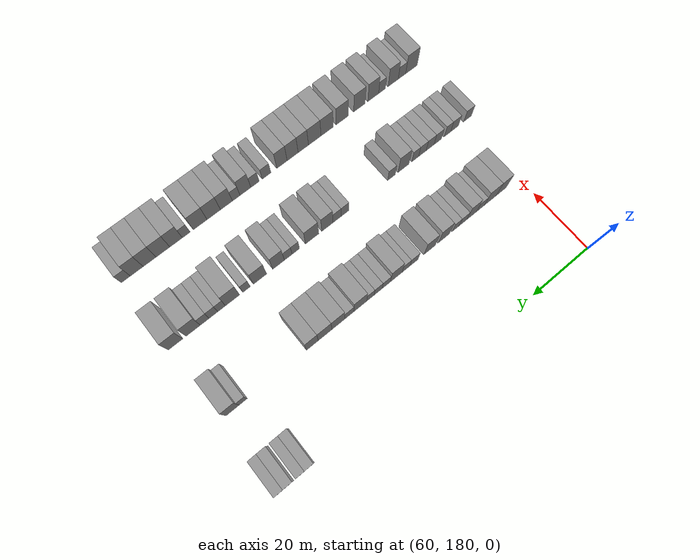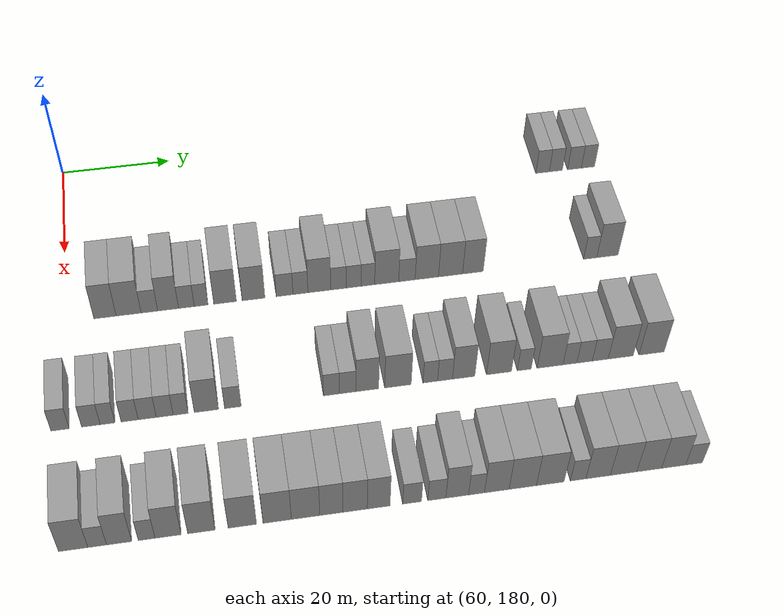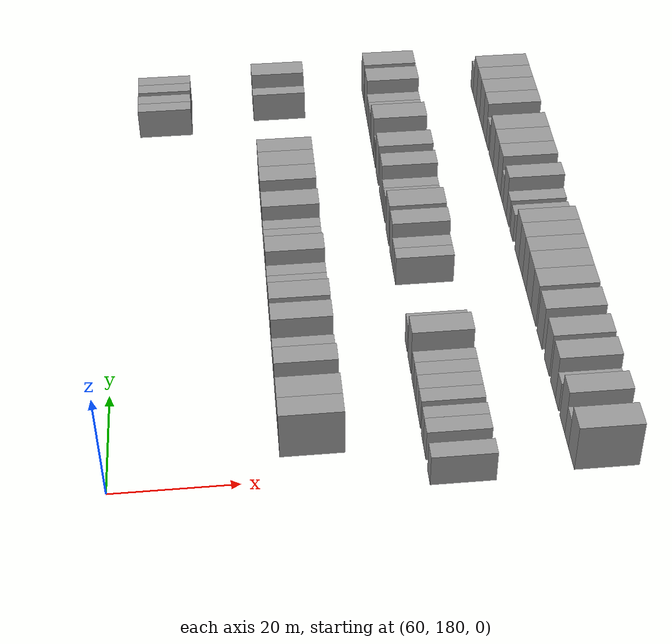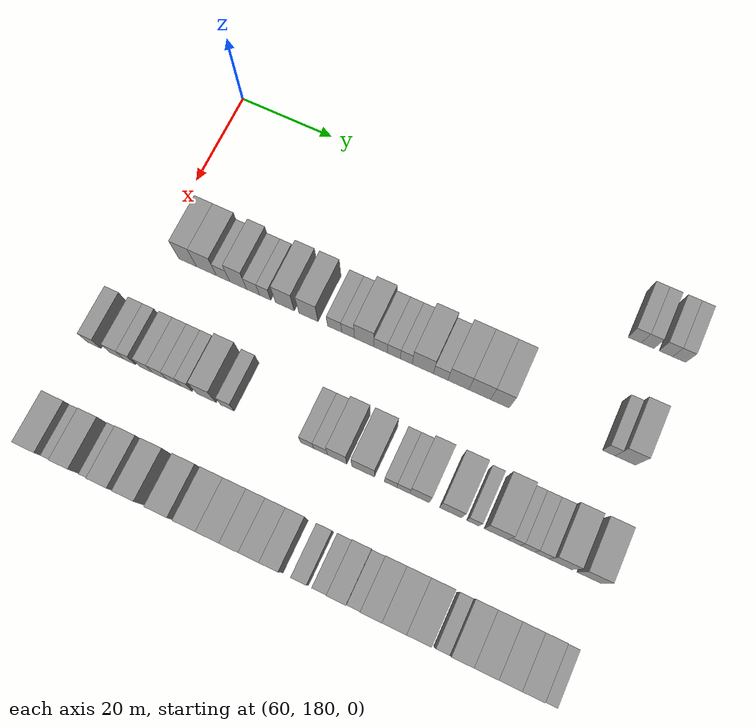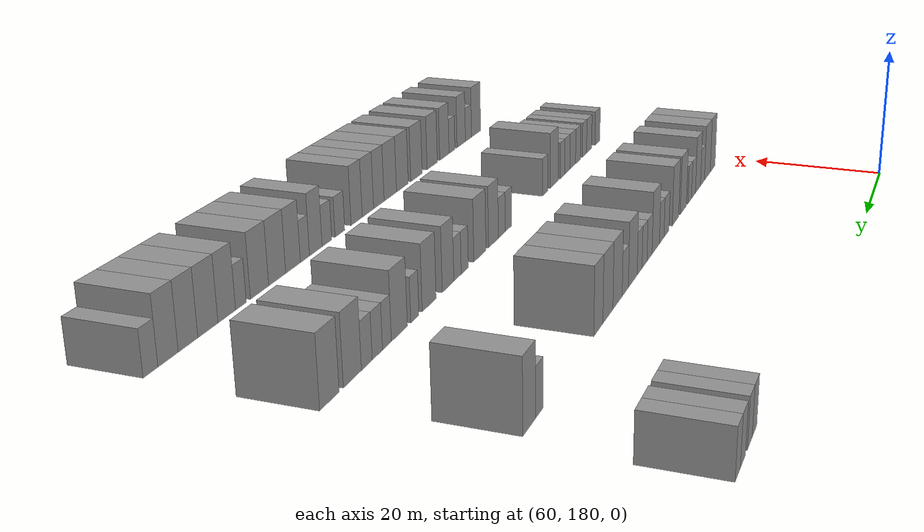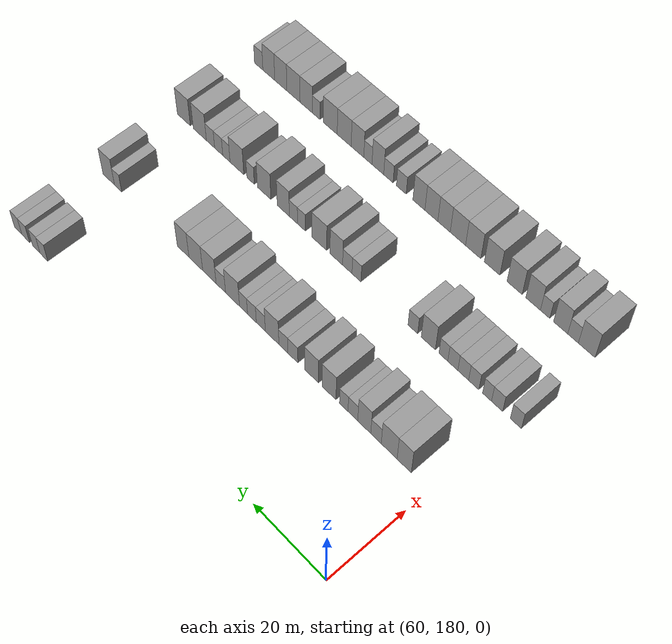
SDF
<sdf version="1.6">
 <world name="default">
  <model name="building_539">
   <static>1</static>
   <pose>69.0000 270.0166 0 0.000000 0.000000 0.000000</pose>
   <link name="link">
    <pose>0 0 3.00 0 0 0</pose>
    <collision name="collision"><geometry><box><size>10.0000 2.6324 6.0000</size></box></geometry></collision>
    <visual name="visual">
     <cast_shadows>0</cast_shadows>
     <geometry><box><size>10.0000 2.6324 6.0000</size></box></geometry>
     <material>
      <script>
       <uri>model://grey_wall/materials/scripts</uri>
       <uri>model://grey_wall/materials/textures</uri>
       <name>vrc/grey_wall</name>
      </script>
     </material>
    </visual>
   </link>
  </model>
  <model name="building_540">
   <static>1</static>
   <pose>69.0000 272.6156 0 0.000000 0.000000 0.000000</pose>
   <link name="link">
    <pose>0 0 3.00 0 0 0</pose>
    <collision name="collision"><geometry><box><size>10.0000 2.5657 6.0000</size></box></geometry></collision>
    <visual name="visual">
     <cast_shadows>0</cast_shadows>
     <geometry><box><size>10.0000 2.5657 6.0000</size></box></geometry>
     <material>
      <script>
       <uri>model://grey_wall/materials/scripts</uri>
       <uri>model://grey_wall/materials/textures</uri>
       <name>vrc/grey_wall</name>
      </script>
     </material>
    </visual>
   </link>
  </model>
  <model name="building_541">
   <static>1</static>
   <pose>69.0000 276.2423 0 0.000000 0.000000 0.000000</pose>
   <link name="link">
    <pose>0 0 3.00 0 0 0</pose>
    <collision name="collision"><geometry><box><size>10.0000 2.6877 6.0000</size></box></geometry></collision>
    <visual name="visual">
     <cast_shadows>0</cast_shadows>
     <geometry><box><size>10.0000 2.6877 6.0000</size></box></geometry>
     <material>
      <script>
       <uri>model://grey_wall/materials/scripts</uri>
       <uri>model://grey_wall/materials/textures</uri>
       <name>vrc/grey_wall</name>
      </script>
     </material>
    </visual>
   </link>
  </model>
  <model name="building_542">
   <static>1</static>
   <pose>69.0000 278.8850 0 0.000000 0.000000 0.000000</pose>
   <link name="link">
    <pose>0 0 3.00 0 0 0</pose>
    <collision name="collision"><geometry><box><size>10.0000 2.5975 6.0000</size></box></geometry></collision>
    <visual name="visual">
     <cast_shadows>0</cast_shadows>
     <geometry><box><size>10.0000 2.5975 6.0000</size></box></geometry>
     <material>
      <script>
       <uri>model://grey_wall/materials/scripts</uri>
       <uri>model://grey_wall/materials/textures</uri>
       <name>vrc/grey_wall</name>
      </script>
     </material>
    </visual>
   </link>
  </model>
  <model name="building_708">
   <static>1</static>
   <pose>91.0000 186.6628 0 0.000000 0.000000 0.000000</pose>
   <link name="link">
    <pose>0 0 4.50 0 0 0</pose>
    <collision name="collision"><geometry><box><size>10.0000 3.8399 9.0000</size></box></geometry></collision>
    <visual name="visual">
     <cast_shadows>0</cast_shadows>
     <geometry><box><size>10.0000 3.8399 9.0000</size></box></geometry>
     <material>
      <script>
       <uri>model://grey_wall/materials/scripts</uri>
       <uri>model://grey_wall/materials/textures</uri>
       <name>vrc/grey_wall</name>
      </script>
     </material>
    </visual>
   </link>
  </model>
  <model name="building_709">
   <static>1</static>
   <pose>91.0000 190.7460 0 0.000000 0.000000 0.000000</pose>
   <link name="link">
    <pose>0 0 4.50 0 0 0</pose>
    <collision name="collision"><geometry><box><size>10.0000 4.3265 9.0000</size></box></geometry></collision>
    <visual name="visual">
     <cast_shadows>0</cast_shadows>
     <geometry><box><size>10.0000 4.3265 9.0000</size></box></geometry>
     <material>
      <script>
       <uri>model://grey_wall/materials/scripts</uri>
       <uri>model://grey_wall/materials/textures</uri>
       <name>vrc/grey_wall</name>
      </script>
     </material>
    </visual>
   </link>
  </model>
  <model name="building_710">
   <static>1</static>
   <pose>91.0000 194.3509 0 0.000000 0.000000 0.000000</pose>
   <link name="link">
    <pose>0 0 3.00 0 0 0</pose>
    <collision name="collision"><geometry><box><size>10.0000 2.8833 6.0000</size></box></geometry></collision>
    <visual name="visual">
     <cast_shadows>0</cast_shadows>
     <geometry><box><size>10.0000 2.8833 6.0000</size></box></geometry>
     <material>
      <script>
       <uri>model://grey_wall/materials/scripts</uri>
       <uri>model://grey_wall/materials/textures</uri>
       <name>vrc/grey_wall</name>
      </script>
     </material>
    </visual>
   </link>
  </model>
  <model name="building_711">
   <static>1</static>
   <pose>91.0000 197.6028 0 0.000000 0.000000 0.000000</pose>
   <link name="link">
    <pose>0 0 4.50 0 0 0</pose>
    <collision name="collision"><geometry><box><size>10.0000 3.6205 9.0000</size></box></geometry></collision>
    <visual name="visual">
     <cast_shadows>0</cast_shadows>
     <geometry><box><size>10.0000 3.6205 9.0000</size></box></geometry>
     <material>
      <script>
       <uri>model://grey_wall/materials/scripts</uri>
       <uri>model://grey_wall/materials/textures</uri>
       <name>vrc/grey_wall</name>
      </script>
     </material>
    </visual>
   </link>
  </model>
  <model name="building_712">
   <static>1</static>
   <pose>91.0000 200.7875 0 0.000000 0.000000 0.000000</pose>
   <link name="link">
    <pose>0 0 3.00 0 0 0</pose>
    <collision name="collision"><geometry><box><size>10.0000 2.7489 6.0000</size></box></geometry></collision>
    <visual name="visual">
     <cast_shadows>0</cast_shadows>
     <geometry><box><size>10.0000 2.7489 6.0000</size></box></geometry>
     <material>
      <script>
       <uri>model://grey_wall/materials/scripts</uri>
       <uri>model://grey_wall/materials/textures</uri>
       <name>vrc/grey_wall</name>
      </script>
     </material>
    </visual>
   </link>
  </model>
  <model name="building_713">
   <static>1</static>
   <pose>91.0000 203.3646 0 0.000000 0.000000 0.000000</pose>
   <link name="link">
    <pose>0 0 3.00 0 0 0</pose>
    <collision name="collision"><geometry><box><size>10.0000 2.4052 6.0000</size></box></geometry></collision>
    <visual name="visual">
     <cast_shadows>0</cast_shadows>
     <geometry><box><size>10.0000 2.4052 6.0000</size></box></geometry>
     <material>
      <script>
       <uri>model://grey_wall/materials/scripts</uri>
       <uri>model://grey_wall/materials/textures</uri>
       <name>vrc/grey_wall</name>
      </script>
     </material>
    </visual>
   </link>
  </model>
  <model name="building_714">
   <static>1</static>
   <pose>91.0000 207.5582 0 0.000000 0.000000 0.000000</pose>
   <link name="link">
    <pose>0 0 4.50 0 0 0</pose>
    <collision name="collision"><geometry><box><size>10.0000 3.9821 9.0000</size></box></geometry></collision>
    <visual name="visual">
     <cast_shadows>0</cast_shadows>
     <geometry><box><size>10.0000 3.9821 9.0000</size></box></geometry>
     <material>
      <script>
       <uri>model://grey_wall/materials/scripts</uri>
       <uri>model://grey_wall/materials/textures</uri>
       <name>vrc/grey_wall</name>
      </script>
     </material>
    </visual>
   </link>
  </model>
  <model name="building_715">
   <static>1</static>
   <pose>91.0000 212.5564 0 0.000000 0.000000 0.000000</pose>
   <link name="link">
    <pose>0 0 4.50 0 0 0</pose>
    <collision name="collision"><geometry><box><size>10.0000 4.0143 9.0000</size></box></geometry></collision>
    <visual name="visual">
     <cast_shadows>0</cast_shadows>
     <geometry><box><size>10.0000 4.0143 9.0000</size></box></geometry>
     <material>
      <script>
       <uri>model://grey_wall/materials/scripts</uri>
       <uri>model://grey_wall/materials/textures</uri>
       <name>vrc/grey_wall</name>
      </script>
     </material>
    </visual>
   </link>
  </model>
  <model name="building_716">
   <static>1</static>
   <pose>91.0000 218.0410 0 0.000000 0.000000 0.000000</pose>
   <link name="link">
    <pose>0 0 3.00 0 0 0</pose>
    <collision name="collision"><geometry><box><size>10.0000 2.9549 6.0000</size></box></geometry></collision>
    <visual name="visual">
     <cast_shadows>0</cast_shadows>
     <geometry><box><size>10.0000 2.9549 6.0000</size></box></geometry>
     <material>
      <script>
       <uri>model://grey_wall/materials/scripts</uri>
       <uri>model://grey_wall/materials/textures</uri>
       <name>vrc/grey_wall</name>
      </script>
     </material>
    </visual>
   </link>
  </model>
  <model name="building_717">
   <static>1</static>
   <pose>91.0000 220.8439 0 0.000000 0.000000 0.000000</pose>
   <link name="link">
    <pose>0 0 3.00 0 0 0</pose>
    <collision name="collision"><geometry><box><size>10.0000 2.6510 6.0000</size></box></geometry></collision>
    <visual name="visual">
     <cast_shadows>0</cast_shadows>
     <geometry><box><size>10.0000 2.6510 6.0000</size></box></geometry>
     <material>
      <script>
       <uri>model://grey_wall/materials/scripts</uri>
       <uri>model://grey_wall/materials/textures</uri>
       <name>vrc/grey_wall</name>
      </script>
     </material>
    </visual>
   </link>
  </model>
  <model name="building_718">
   <static>1</static>
   <pose>91.0000 224.2009 0 0.000000 0.000000 0.000000</pose>
   <link name="link">
    <pose>0 0 4.50 0 0 0</pose>
    <collision name="collision"><geometry><box><size>10.0000 4.0630 9.0000</size></box></geometry></collision>
    <visual name="visual">
     <cast_shadows>0</cast_shadows>
     <geometry><box><size>10.0000 4.0630 9.0000</size></box></geometry>
     <material>
      <script>
       <uri>model://grey_wall/materials/scripts</uri>
       <uri>model://grey_wall/materials/textures</uri>
       <name>vrc/grey_wall</name>
      </script>
     </material>
    </visual>
   </link>
  </model>
  <model name="building_719">
   <static>1</static>
   <pose>91.0000 227.5975 0 0.000000 0.000000 0.000000</pose>
   <link name="link">
    <pose>0 0 3.00 0 0 0</pose>
    <collision name="collision"><geometry><box><size>10.0000 2.7301 6.0000</size></box></geometry></collision>
    <visual name="visual">
     <cast_shadows>0</cast_shadows>
     <geometry><box><size>10.0000 2.7301 6.0000</size></box></geometry>
     <material>
      <script>
       <uri>model://grey_wall/materials/scripts</uri>
       <uri>model://grey_wall/materials/textures</uri>
       <name>vrc/grey_wall</name>
      </script>
     </material>
    </visual>
   </link>
  </model>
  <model name="building_720">
   <static>1</static>
   <pose>91.0000 230.2960 0 0.000000 0.000000 0.000000</pose>
   <link name="link">
    <pose>0 0 3.00 0 0 0</pose>
    <collision name="collision"><geometry><box><size>10.0000 2.6669 6.0000</size></box></geometry></collision>
    <visual name="visual">
     <cast_shadows>0</cast_shadows>
     <geometry><box><size>10.0000 2.6669 6.0000</size></box></geometry>
     <material>
      <script>
       <uri>model://grey_wall/materials/scripts</uri>
       <uri>model://grey_wall/materials/textures</uri>
       <name>vrc/grey_wall</name>
      </script>
     </material>
    </visual>
   </link>
  </model>
  <model name="building_721">
   <static>1</static>
   <pose>91.0000 232.8555 0 0.000000 0.000000 0.000000</pose>
   <link name="link">
    <pose>0 0 3.00 0 0 0</pose>
    <collision name="collision"><geometry><box><size>10.0000 2.4523 6.0000</size></box></geometry></collision>
    <visual name="visual">
     <cast_shadows>0</cast_shadows>
     <geometry><box><size>10.0000 2.4523 6.0000</size></box></geometry>
     <material>
      <script>
       <uri>model://grey_wall/materials/scripts</uri>
       <uri>model://grey_wall/materials/textures</uri>
       <name>vrc/grey_wall</name>
      </script>
     </material>
    </visual>
   </link>
  </model>
  <model name="building_722">
   <static>1</static>
   <pose>91.0000 236.2412 0 0.000000 0.000000 0.000000</pose>
   <link name="link">
    <pose>0 0 4.50 0 0 0</pose>
    <collision name="collision"><geometry><box><size>10.0000 4.3190 9.0000</size></box></geometry></collision>
    <visual name="visual">
     <cast_shadows>0</cast_shadows>
     <geometry><box><size>10.0000 4.3190 9.0000</size></box></geometry>
     <material>
      <script>
       <uri>model://grey_wall/materials/scripts</uri>
       <uri>model://grey_wall/materials/textures</uri>
       <name>vrc/grey_wall</name>
      </script>
     </material>
    </visual>
   </link>
  </model>
  <model name="building_723">
   <static>1</static>
   <pose>91.0000 239.8791 0 0.000000 0.000000 0.000000</pose>
   <link name="link">
    <pose>0 0 3.00 0 0 0</pose>
    <collision name="collision"><geometry><box><size>10.0000 2.9568 6.0000</size></box></geometry></collision>
    <visual name="visual">
     <cast_shadows>0</cast_shadows>
     <geometry><box><size>10.0000 2.9568 6.0000</size></box></geometry>
     <material>
      <script>
       <uri>model://grey_wall/materials/scripts</uri>
       <uri>model://grey_wall/materials/textures</uri>
       <name>vrc/grey_wall</name>
      </script>
     </material>
    </visual>
   </link>
  </model>
  <model name="building_724">
   <static>1</static>
   <pose>91.0000 243.4673 0 0.000000 0.000000 0.000000</pose>
   <link name="link">
    <pose>0 0 4.50 0 0 0</pose>
    <collision name="collision"><geometry><box><size>10.0000 4.2196 9.0000</size></box></geometry></collision>
    <visual name="visual">
     <cast_shadows>0</cast_shadows>
     <geometry><box><size>10.0000 4.2196 9.0000</size></box></geometry>
     <material>
      <script>
       <uri>model://grey_wall/materials/scripts</uri>
       <uri>model://grey_wall/materials/textures</uri>
       <name>vrc/grey_wall</name>
      </script>
     </material>
    </visual>
   </link>
  </model>
  <model name="building_725">
   <static>1</static>
   <pose>91.0000 247.7592 0 0.000000 0.000000 0.000000</pose>
   <link name="link">
    <pose>0 0 4.50 0 0 0</pose>
    <collision name="collision"><geometry><box><size>10.0000 4.3641 9.0000</size></box></geometry></collision>
    <visual name="visual">
     <cast_shadows>0</cast_shadows>
     <geometry><box><size>10.0000 4.3641 9.0000</size></box></geometry>
     <material>
      <script>
       <uri>model://grey_wall/materials/scripts</uri>
       <uri>model://grey_wall/materials/textures</uri>
       <name>vrc/grey_wall</name>
      </script>
     </material>
    </visual>
   </link>
  </model>
  <model name="building_726">
   <static>1</static>
   <pose>91.0000 251.8215 0 0.000000 0.000000 0.000000</pose>
   <link name="link">
    <pose>0 0 4.50 0 0 0</pose>
    <collision name="collision"><geometry><box><size>10.0000 3.7606 9.0000</size></box></geometry></collision>
    <visual name="visual">
     <cast_shadows>0</cast_shadows>
     <geometry><box><size>10.0000 3.7606 9.0000</size></box></geometry>
     <material>
      <script>
       <uri>model://grey_wall/materials/scripts</uri>
       <uri>model://grey_wall/materials/textures</uri>
       <name>vrc/grey_wall</name>
      </script>
     </material>
    </visual>
   </link>
  </model>
  <model name="building_727">
   <static>1</static>
   <pose>91.0000 273.3491 0 0.000000 0.000000 0.000000</pose>
   <link name="link">
    <pose>0 0 3.00 0 0 0</pose>
    <collision name="collision"><geometry><box><size>10.0000 2.4315 6.0000</size></box></geometry></collision>
    <visual name="visual">
     <cast_shadows>0</cast_shadows>
     <geometry><box><size>10.0000 2.4315 6.0000</size></box></geometry>
     <material>
      <script>
       <uri>model://grey_wall/materials/scripts</uri>
       <uri>model://grey_wall/materials/textures</uri>
       <name>vrc/grey_wall</name>
      </script>
     </material>
    </visual>
   </link>
  </model>
  <model name="building_728">
   <static>1</static>
   <pose>91.0000 276.5462 0 0.000000 0.000000 0.000000</pose>
   <link name="link">
    <pose>0 0 4.50 0 0 0</pose>
    <collision name="collision"><geometry><box><size>10.0000 3.9628 9.0000</size></box></geometry></collision>
    <visual name="visual">
     <cast_shadows>0</cast_shadows>
     <geometry><box><size>10.0000 3.9628 9.0000</size></box></geometry>
     <material>
      <script>
       <uri>model://grey_wall/materials/scripts</uri>
       <uri>model://grey_wall/materials/textures</uri>
       <name>vrc/grey_wall</name>
      </script>
     </material>
    </visual>
   </link>
  </model>
  <model name="building_883">
   <static>1</static>
   <pose>113.0000 178.6025 0 0.000000 0.000000 0.000000</pose>
   <link name="link">
    <pose>0 0 3.00 0 0 0</pose>
    <collision name="collision"><geometry><box><size>10.0000 2.9514 6.0000</size></box></geometry></collision>
    <visual name="visual">
     <cast_shadows>0</cast_shadows>
     <geometry><box><size>10.0000 2.9514 6.0000</size></box></geometry>
     <material>
      <script>
       <uri>model://grey_wall/materials/scripts</uri>
       <uri>model://grey_wall/materials/textures</uri>
       <name>vrc/grey_wall</name>
      </script>
     </material>
    </visual>
   </link>
  </model>
  <model name="building_884">
   <static>1</static>
   <pose>113.0000 183.5753 0 0.000000 0.000000 0.000000</pose>
   <link name="link">
    <pose>0 0 3.00 0 0 0</pose>
    <collision name="collision"><geometry><box><size>10.0000 2.9942 6.0000</size></box></geometry></collision>
    <visual name="visual">
     <cast_shadows>0</cast_shadows>
     <geometry><box><size>10.0000 2.9942 6.0000</size></box></geometry>
     <material>
      <script>
       <uri>model://grey_wall/materials/scripts</uri>
       <uri>model://grey_wall/materials/textures</uri>
       <name>vrc/grey_wall</name>
      </script>
     </material>
    </visual>
   </link>
  </model>
  <model name="building_885">
   <static>1</static>
   <pose>113.0000 186.2754 0 0.000000 0.000000 0.000000</pose>
   <link name="link">
    <pose>0 0 3.00 0 0 0</pose>
    <collision name="collision"><geometry><box><size>10.0000 2.4059 6.0000</size></box></geometry></collision>
    <visual name="visual">
     <cast_shadows>0</cast_shadows>
     <geometry><box><size>10.0000 2.4059 6.0000</size></box></geometry>
     <material>
      <script>
       <uri>model://grey_wall/materials/scripts</uri>
       <uri>model://grey_wall/materials/textures</uri>
       <name>vrc/grey_wall</name>
      </script>
     </material>
    </visual>
   </link>
  </model>
  <model name="building_886">
   <static>1</static>
   <pose>113.0000 189.8701 0 0.000000 0.000000 0.000000</pose>
   <link name="link">
    <pose>0 0 3.00 0 0 0</pose>
    <collision name="collision"><geometry><box><size>10.0000 2.7835 6.0000</size></box></geometry></collision>
    <visual name="visual">
     <cast_shadows>0</cast_shadows>
     <geometry><box><size>10.0000 2.7835 6.0000</size></box></geometry>
     <material>
      <script>
       <uri>model://grey_wall/materials/scripts</uri>
       <uri>model://grey_wall/materials/textures</uri>
       <name>vrc/grey_wall</name>
      </script>
     </material>
    </visual>
   </link>
  </model>
  <model name="building_887">
   <static>1</static>
   <pose>113.0000 192.7356 0 0.000000 0.000000 0.000000</pose>
   <link name="link">
    <pose>0 0 3.00 0 0 0</pose>
    <collision name="collision"><geometry><box><size>10.0000 2.9476 6.0000</size></box></geometry></collision>
    <visual name="visual">
     <cast_shadows>0</cast_shadows>
     <geometry><box><size>10.0000 2.9476 6.0000</size></box></geometry>
     <material>
      <script>
       <uri>model://grey_wall/materials/scripts</uri>
       <uri>model://grey_wall/materials/textures</uri>
       <name>vrc/grey_wall</name>
      </script>
     </material>
    </visual>
   </link>
  </model>
  <model name="building_888">
   <static>1</static>
   <pose>113.0000 195.5973 0 0.000000 0.000000 0.000000</pose>
   <link name="link">
    <pose>0 0 3.00 0 0 0</pose>
    <collision name="collision"><geometry><box><size>10.0000 2.7757 6.0000</size></box></geometry></collision>
    <visual name="visual">
     <cast_shadows>0</cast_shadows>
     <geometry><box><size>10.0000 2.7757 6.0000</size></box></geometry>
     <material>
      <script>
       <uri>model://grey_wall/materials/scripts</uri>
       <uri>model://grey_wall/materials/textures</uri>
       <name>vrc/grey_wall</name>
      </script>
     </material>
    </visual>
   </link>
  </model>
  <model name="building_889">
   <static>1</static>
   <pose>113.0000 198.2112 0 0.000000 0.000000 0.000000</pose>
   <link name="link">
    <pose>0 0 3.00 0 0 0</pose>
    <collision name="collision"><geometry><box><size>10.0000 2.4521 6.0000</size></box></geometry></collision>
    <visual name="visual">
     <cast_shadows>0</cast_shadows>
     <geometry><box><size>10.0000 2.4521 6.0000</size></box></geometry>
     <material>
      <script>
       <uri>model://grey_wall/materials/scripts</uri>
       <uri>model://grey_wall/materials/textures</uri>
       <name>vrc/grey_wall</name>
      </script>
     </material>
    </visual>
   </link>
  </model>
  <model name="building_890">
   <static>1</static>
   <pose>113.0000 202.4289 0 0.000000 0.000000 0.000000</pose>
   <link name="link">
    <pose>0 0 4.50 0 0 0</pose>
    <collision name="collision"><geometry><box><size>10.0000 3.9834 9.0000</size></box></geometry></collision>
    <visual name="visual">
     <cast_shadows>0</cast_shadows>
     <geometry><box><size>10.0000 3.9834 9.0000</size></box></geometry>
     <material>
      <script>
       <uri>model://grey_wall/materials/scripts</uri>
       <uri>model://grey_wall/materials/textures</uri>
       <name>vrc/grey_wall</name>
      </script>
     </material>
    </visual>
   </link>
  </model>
  <model name="building_891">
   <static>1</static>
   <pose>113.0000 206.7985 0 0.000000 0.000000 0.000000</pose>
   <link name="link">
    <pose>0 0 3.00 0 0 0</pose>
    <collision name="collision"><geometry><box><size>10.0000 2.7558 6.0000</size></box></geometry></collision>
    <visual name="visual">
     <cast_shadows>0</cast_shadows>
     <geometry><box><size>10.0000 2.7558 6.0000</size></box></geometry>
     <material>
      <script>
       <uri>model://grey_wall/materials/scripts</uri>
       <uri>model://grey_wall/materials/textures</uri>
       <name>vrc/grey_wall</name>
      </script>
     </material>
    </visual>
   </link>
  </model>
  <model name="building_892">
   <static>1</static>
   <pose>113.0000 223.1789 0 0.000000 0.000000 0.000000</pose>
   <link name="link">
    <pose>0 0 3.00 0 0 0</pose>
    <collision name="collision"><geometry><box><size>10.0000 2.6683 6.0000</size></box></geometry></collision>
    <visual name="visual">
     <cast_shadows>0</cast_shadows>
     <geometry><box><size>10.0000 2.6683 6.0000</size></box></geometry>
     <material>
      <script>
       <uri>model://grey_wall/materials/scripts</uri>
       <uri>model://grey_wall/materials/textures</uri>
       <name>vrc/grey_wall</name>
      </script>
     </material>
    </visual>
   </link>
  </model>
  <model name="building_893">
   <static>1</static>
   <pose>113.0000 225.9132 0 0.000000 0.000000 0.000000</pose>
   <link name="link">
    <pose>0 0 3.00 0 0 0</pose>
    <collision name="collision"><geometry><box><size>10.0000 2.8003 6.0000</size></box></geometry></collision>
    <visual name="visual">
     <cast_shadows>0</cast_shadows>
     <geometry><box><size>10.0000 2.8003 6.0000</size></box></geometry>
     <material>
      <script>
       <uri>model://grey_wall/materials/scripts</uri>
       <uri>model://grey_wall/materials/textures</uri>
       <name>vrc/grey_wall</name>
      </script>
     </material>
    </visual>
   </link>
  </model>
  <model name="building_894">
   <static>1</static>
   <pose>113.0000 229.2231 0 0.000000 0.000000 0.000000</pose>
   <link name="link">
    <pose>0 0 4.50 0 0 0</pose>
    <collision name="collision"><geometry><box><size>10.0000 3.8196 9.0000</size></box></geometry></collision>
    <visual name="visual">
     <cast_shadows>0</cast_shadows>
     <geometry><box><size>10.0000 3.8196 9.0000</size></box></geometry>
     <material>
      <script>
       <uri>model://grey_wall/materials/scripts</uri>
       <uri>model://grey_wall/materials/textures</uri>
       <name>vrc/grey_wall</name>
      </script>
     </material>
    </visual>
   </link>
  </model>
  <model name="building_895">
   <static>1</static>
   <pose>113.0000 234.3819 0 0.000000 0.000000 0.000000</pose>
   <link name="link">
    <pose>0 0 4.50 0 0 0</pose>
    <collision name="collision"><geometry><box><size>10.0000 4.4979 9.0000</size></box></geometry></collision>
    <visual name="visual">
     <cast_shadows>0</cast_shadows>
     <geometry><box><size>10.0000 4.4979 9.0000</size></box></geometry>
     <material>
      <script>
       <uri>model://grey_wall/materials/scripts</uri>
       <uri>model://grey_wall/materials/textures</uri>
       <name>vrc/grey_wall</name>
      </script>
     </material>
    </visual>
   </link>
  </model>
  <model name="building_896">
   <static>1</static>
   <pose>113.0000 239.8631 0 0.000000 0.000000 0.000000</pose>
   <link name="link">
    <pose>0 0 3.00 0 0 0</pose>
    <collision name="collision"><geometry><box><size>10.0000 2.4645 6.0000</size></box></geometry></collision>
    <visual name="visual">
     <cast_shadows>0</cast_shadows>
     <geometry><box><size>10.0000 2.4645 6.0000</size></box></geometry>
     <material>
      <script>
       <uri>model://grey_wall/materials/scripts</uri>
       <uri>model://grey_wall/materials/textures</uri>
       <name>vrc/grey_wall</name>
      </script>
     </material>
    </visual>
   </link>
  </model>
  <model name="building_897">
   <static>1</static>
   <pose>113.0000 242.3641 0 0.000000 0.000000 0.000000</pose>
   <link name="link">
    <pose>0 0 3.00 0 0 0</pose>
    <collision name="collision"><geometry><box><size>10.0000 2.5375 6.0000</size></box></geometry></collision>
    <visual name="visual">
     <cast_shadows>0</cast_shadows>
     <geometry><box><size>10.0000 2.5375 6.0000</size></box></geometry>
     <material>
      <script>
       <uri>model://grey_wall/materials/scripts</uri>
       <uri>model://grey_wall/materials/textures</uri>
       <name>vrc/grey_wall</name>
      </script>
     </material>
    </visual>
   </link>
  </model>
  <model name="building_898">
   <static>1</static>
   <pose>113.0000 245.5498 0 0.000000 0.000000 0.000000</pose>
   <link name="link">
    <pose>0 0 4.50 0 0 0</pose>
    <collision name="collision"><geometry><box><size>10.0000 3.8339 9.0000</size></box></geometry></collision>
    <visual name="visual">
     <cast_shadows>0</cast_shadows>
     <geometry><box><size>10.0000 3.8339 9.0000</size></box></geometry>
     <material>
      <script>
       <uri>model://grey_wall/materials/scripts</uri>
       <uri>model://grey_wall/materials/textures</uri>
       <name>vrc/grey_wall</name>
      </script>
     </material>
    </visual>
   </link>
  </model>
  <model name="building_899">
   <static>1</static>
   <pose>113.0000 251.6136 0 0.000000 0.000000 0.000000</pose>
   <link name="link">
    <pose>0 0 4.50 0 0 0</pose>
    <collision name="collision"><geometry><box><size>10.0000 4.2938 9.0000</size></box></geometry></collision>
    <visual name="visual">
     <cast_shadows>0</cast_shadows>
     <geometry><box><size>10.0000 4.2938 9.0000</size></box></geometry>
     <material>
      <script>
       <uri>model://grey_wall/materials/scripts</uri>
       <uri>model://grey_wall/materials/textures</uri>
       <name>vrc/grey_wall</name>
      </script>
     </material>
    </visual>
   </link>
  </model>
  <model name="building_900">
   <static>1</static>
   <pose>113.0000 255.9635 0 0.000000 0.000000 0.000000</pose>
   <link name="link">
    <pose>0 0 3.00 0 0 0</pose>
    <collision name="collision"><geometry><box><size>10.0000 2.4061 6.0000</size></box></geometry></collision>
    <visual name="visual">
     <cast_shadows>0</cast_shadows>
     <geometry><box><size>10.0000 2.4061 6.0000</size></box></geometry>
     <material>
      <script>
       <uri>model://grey_wall/materials/scripts</uri>
       <uri>model://grey_wall/materials/textures</uri>
       <name>vrc/grey_wall</name>
      </script>
     </material>
    </visual>
   </link>
  </model>
  <model name="building_901">
   <static>1</static>
   <pose>113.0000 260.4113 0 0.000000 0.000000 0.000000</pose>
   <link name="link">
    <pose>0 0 4.50 0 0 0</pose>
    <collision name="collision"><geometry><box><size>10.0000 4.4895 9.0000</size></box></geometry></collision>
    <visual name="visual">
     <cast_shadows>0</cast_shadows>
     <geometry><box><size>10.0000 4.4895 9.0000</size></box></geometry>
     <material>
      <script>
       <uri>model://grey_wall/materials/scripts</uri>
       <uri>model://grey_wall/materials/textures</uri>
       <name>vrc/grey_wall</name>
      </script>
     </material>
    </visual>
   </link>
  </model>
  <model name="building_902">
   <static>1</static>
   <pose>113.0000 263.8571 0 0.000000 0.000000 0.000000</pose>
   <link name="link">
    <pose>0 0 3.00 0 0 0</pose>
    <collision name="collision"><geometry><box><size>10.0000 2.4019 6.0000</size></box></geometry></collision>
    <visual name="visual">
     <cast_shadows>0</cast_shadows>
     <geometry><box><size>10.0000 2.4019 6.0000</size></box></geometry>
     <material>
      <script>
       <uri>model://grey_wall/materials/scripts</uri>
       <uri>model://grey_wall/materials/textures</uri>
       <name>vrc/grey_wall</name>
      </script>
     </material>
    </visual>
   </link>
  </model>
  <model name="building_903">
   <static>1</static>
   <pose>113.0000 266.4075 0 0.000000 0.000000 0.000000</pose>
   <link name="link">
    <pose>0 0 3.00 0 0 0</pose>
    <collision name="collision"><geometry><box><size>10.0000 2.6990 6.0000</size></box></geometry></collision>
    <visual name="visual">
     <cast_shadows>0</cast_shadows>
     <geometry><box><size>10.0000 2.6990 6.0000</size></box></geometry>
     <material>
      <script>
       <uri>model://grey_wall/materials/scripts</uri>
       <uri>model://grey_wall/materials/textures</uri>
       <name>vrc/grey_wall</name>
      </script>
     </material>
    </visual>
   </link>
  </model>
  <model name="building_904">
   <static>1</static>
   <pose>113.0000 269.1327 0 0.000000 0.000000 0.000000</pose>
   <link name="link">
    <pose>0 0 3.00 0 0 0</pose>
    <collision name="collision"><geometry><box><size>10.0000 2.7513 6.0000</size></box></geometry></collision>
    <visual name="visual">
     <cast_shadows>0</cast_shadows>
     <geometry><box><size>10.0000 2.7513 6.0000</size></box></geometry>
     <material>
      <script>
       <uri>model://grey_wall/materials/scripts</uri>
       <uri>model://grey_wall/materials/textures</uri>
       <name>vrc/grey_wall</name>
      </script>
     </material>
    </visual>
   </link>
  </model>
  <model name="building_905">
   <static>1</static>
   <pose>113.0000 272.7066 0 0.000000 0.000000 0.000000</pose>
   <link name="link">
    <pose>0 0 4.50 0 0 0</pose>
    <collision name="collision"><geometry><box><size>10.0000 4.3965 9.0000</size></box></geometry></collision>
    <visual name="visual">
     <cast_shadows>0</cast_shadows>
     <geometry><box><size>10.0000 4.3965 9.0000</size></box></geometry>
     <material>
      <script>
       <uri>model://grey_wall/materials/scripts</uri>
       <uri>model://grey_wall/materials/textures</uri>
       <name>vrc/grey_wall</name>
      </script>
     </material>
    </visual>
   </link>
  </model>
  <model name="building_906">
   <static>1</static>
   <pose>113.0000 278.1227 0 0.000000 0.000000 0.000000</pose>
   <link name="link">
    <pose>0 0 4.50 0 0 0</pose>
    <collision name="collision"><geometry><box><size>10.0000 4.4355 9.0000</size></box></geometry></collision>
    <visual name="visual">
     <cast_shadows>0</cast_shadows>
     <geometry><box><size>10.0000 4.4355 9.0000</size></box></geometry>
     <material>
      <script>
       <uri>model://grey_wall/materials/scripts</uri>
       <uri>model://grey_wall/materials/textures</uri>
       <name>vrc/grey_wall</name>
      </script>
     </material>
    </visual>
   </link>
  </model>
  <model name="building_1072">
   <static>1</static>
   <pose>135.0000 180.2424 0 0.000000 0.000000 0.000000</pose>
   <link name="link">
    <pose>0 0 4.50 0 0 0</pose>
    <collision name="collision"><geometry><box><size>10.0000 4.4291 9.0000</size></box></geometry></collision>
    <visual name="visual">
     <cast_shadows>0</cast_shadows>
     <geometry><box><size>10.0000 4.4291 9.0000</size></box></geometry>
     <material>
      <script>
       <uri>model://grey_wall/materials/scripts</uri>
       <uri>model://grey_wall/materials/textures</uri>
       <name>vrc/grey_wall</name>
      </script>
     </material>
    </visual>
   </link>
  </model>
  <model name="building_1073">
   <static>1</static>
   <pose>135.0000 183.8774 0 0.000000 0.000000 0.000000</pose>
   <link name="link">
    <pose>0 0 3.00 0 0 0</pose>
    <collision name="collision"><geometry><box><size>10.0000 2.8407 6.0000</size></box></geometry></collision>
    <visual name="visual">
     <cast_shadows>0</cast_shadows>
     <geometry><box><size>10.0000 2.8407 6.0000</size></box></geometry>
     <material>
      <script>
       <uri>model://grey_wall/materials/scripts</uri>
       <uri>model://grey_wall/materials/textures</uri>
       <name>vrc/grey_wall</name>
      </script>
     </material>
    </visual>
   </link>
  </model>
  <model name="building_1074">
   <static>1</static>
   <pose>135.0000 187.2081 0 0.000000 0.000000 0.000000</pose>
   <link name="link">
    <pose>0 0 4.50 0 0 0</pose>
    <collision name="collision"><geometry><box><size>10.0000 3.8208 9.0000</size></box></geometry></collision>
    <visual name="visual">
     <cast_shadows>0</cast_shadows>
     <geometry><box><size>10.0000 3.8208 9.0000</size></box></geometry>
     <material>
      <script>
       <uri>model://grey_wall/materials/scripts</uri>
       <uri>model://grey_wall/materials/textures</uri>
       <name>vrc/grey_wall</name>
      </script>
     </material>
    </visual>
   </link>
  </model>
  <model name="building_1075">
   <static>1</static>
   <pose>135.0000 191.4019 0 0.000000 0.000000 0.000000</pose>
   <link name="link">
    <pose>0 0 3.00 0 0 0</pose>
    <collision name="collision"><geometry><box><size>10.0000 2.5669 6.0000</size></box></geometry></collision>
    <visual name="visual">
     <cast_shadows>0</cast_shadows>
     <geometry><box><size>10.0000 2.5669 6.0000</size></box></geometry>
     <material>
      <script>
       <uri>model://grey_wall/materials/scripts</uri>
       <uri>model://grey_wall/materials/textures</uri>
       <name>vrc/grey_wall</name>
      </script>
     </material>
    </visual>
   </link>
  </model>
  <model name="building_1076">
   <static>1</static>
   <pose>135.0000 194.6913 0 0.000000 0.000000 0.000000</pose>
   <link name="link">
    <pose>0 0 4.50 0 0 0</pose>
    <collision name="collision"><geometry><box><size>10.0000 4.0118 9.0000</size></box></geometry></collision>
    <visual name="visual">
     <cast_shadows>0</cast_shadows>
     <geometry><box><size>10.0000 4.0118 9.0000</size></box></geometry>
     <material>
      <script>
       <uri>model://grey_wall/materials/scripts</uri>
       <uri>model://grey_wall/materials/textures</uri>
       <name>vrc/grey_wall</name>
      </script>
     </material>
    </visual>
   </link>
  </model>
  <model name="building_1077">
   <static>1</static>
   <pose>135.0000 199.8107 0 0.000000 0.000000 0.000000</pose>
   <link name="link">
    <pose>0 0 4.50 0 0 0</pose>
    <collision name="collision"><geometry><box><size>10.0000 4.2271 9.0000</size></box></geometry></collision>
    <visual name="visual">
     <cast_shadows>0</cast_shadows>
     <geometry><box><size>10.0000 4.2271 9.0000</size></box></geometry>
     <material>
      <script>
       <uri>model://grey_wall/materials/scripts</uri>
       <uri>model://grey_wall/materials/textures</uri>
       <name>vrc/grey_wall</name>
      </script>
     </material>
    </visual>
   </link>
  </model>
  <model name="building_1078">
   <static>1</static>
   <pose>135.0000 206.1301 0 0.000000 0.000000 0.000000</pose>
   <link name="link">
    <pose>0 0 4.50 0 0 0</pose>
    <collision name="collision"><geometry><box><size>10.0000 4.4117 9.0000</size></box></geometry></collision>
    <visual name="visual">
     <cast_shadows>0</cast_shadows>
     <geometry><box><size>10.0000 4.4117 9.0000</size></box></geometry>
     <material>
      <script>
       <uri>model://grey_wall/materials/scripts</uri>
       <uri>model://grey_wall/materials/textures</uri>
       <name>vrc/grey_wall</name>
      </script>
     </material>
    </visual>
   </link>
  </model>
  <model name="building_1079">
   <static>1</static>
   <pose>135.0000 211.5339 0 0.000000 0.000000 0.000000</pose>
   <link name="link">
    <pose>0 0 4.50 0 0 0</pose>
    <collision name="collision"><geometry><box><size>10.0000 4.3959 9.0000</size></box></geometry></collision>
    <visual name="visual">
     <cast_shadows>0</cast_shadows>
     <geometry><box><size>10.0000 4.3959 9.0000</size></box></geometry>
     <material>
      <script>
       <uri>model://grey_wall/materials/scripts</uri>
       <uri>model://grey_wall/materials/textures</uri>
       <name>vrc/grey_wall</name>
      </script>
     </material>
    </visual>
   </link>
  </model>
  <model name="building_1080">
   <static>1</static>
   <pose>135.0000 215.9590 0 0.000000 0.000000 0.000000</pose>
   <link name="link">
    <pose>0 0 4.50 0 0 0</pose>
    <collision name="collision"><geometry><box><size>10.0000 4.4543 9.0000</size></box></geometry></collision>
    <visual name="visual">
     <cast_shadows>0</cast_shadows>
     <geometry><box><size>10.0000 4.4543 9.0000</size></box></geometry>
     <material>
      <script>
       <uri>model://grey_wall/materials/scripts</uri>
       <uri>model://grey_wall/materials/textures</uri>
       <name>vrc/grey_wall</name>
      </script>
     </material>
    </visual>
   </link>
  </model>
  <model name="building_1081">
   <static>1</static>
   <pose>135.0000 220.0057 0 0.000000 0.000000 0.000000</pose>
   <link name="link">
    <pose>0 0 4.50 0 0 0</pose>
    <collision name="collision"><geometry><box><size>10.0000 3.6392 9.0000</size></box></geometry></collision>
    <visual name="visual">
     <cast_shadows>0</cast_shadows>
     <geometry><box><size>10.0000 3.6392 9.0000</size></box></geometry>
     <material>
      <script>
       <uri>model://grey_wall/materials/scripts</uri>
       <uri>model://grey_wall/materials/textures</uri>
       <name>vrc/grey_wall</name>
      </script>
     </material>
    </visual>
   </link>
  </model>
  <model name="building_1082">
   <static>1</static>
   <pose>135.0000 223.7382 0 0.000000 0.000000 0.000000</pose>
   <link name="link">
    <pose>0 0 4.50 0 0 0</pose>
    <collision name="collision"><geometry><box><size>10.0000 3.8257 9.0000</size></box></geometry></collision>
    <visual name="visual">
     <cast_shadows>0</cast_shadows>
     <geometry><box><size>10.0000 3.8257 9.0000</size></box></geometry>
     <material>
      <script>
       <uri>model://grey_wall/materials/scripts</uri>
       <uri>model://grey_wall/materials/textures</uri>
       <name>vrc/grey_wall</name>
      </script>
     </material>
    </visual>
   </link>
  </model>
  <model name="building_1083">
   <static>1</static>
   <pose>135.0000 227.4544 0 0.000000 0.000000 0.000000</pose>
   <link name="link">
    <pose>0 0 4.50 0 0 0</pose>
    <collision name="collision"><geometry><box><size>10.0000 3.6068 9.0000</size></box></geometry></collision>
    <visual name="visual">
     <cast_shadows>0</cast_shadows>
     <geometry><box><size>10.0000 3.6068 9.0000</size></box></geometry>
     <material>
      <script>
       <uri>model://grey_wall/materials/scripts</uri>
       <uri>model://grey_wall/materials/textures</uri>
       <name>vrc/grey_wall</name>
      </script>
     </material>
    </visual>
   </link>
  </model>
  <model name="building_1084">
   <static>1</static>
   <pose>135.0000 232.7521 0 0.000000 0.000000 0.000000</pose>
   <link name="link">
    <pose>0 0 3.00 0 0 0</pose>
    <collision name="collision"><geometry><box><size>10.0000 2.9885 6.0000</size></box></geometry></collision>
    <visual name="visual">
     <cast_shadows>0</cast_shadows>
     <geometry><box><size>10.0000 2.9885 6.0000</size></box></geometry>
     <material>
      <script>
       <uri>model://grey_wall/materials/scripts</uri>
       <uri>model://grey_wall/materials/textures</uri>
       <name>vrc/grey_wall</name>
      </script>
     </material>
    </visual>
   </link>
  </model>
  <model name="building_1085">
   <static>1</static>
   <pose>135.0000 236.6806 0 0.000000 0.000000 0.000000</pose>
   <link name="link">
    <pose>0 0 3.00 0 0 0</pose>
    <collision name="collision"><geometry><box><size>10.0000 2.8684 6.0000</size></box></geometry></collision>
    <visual name="visual">
     <cast_shadows>0</cast_shadows>
     <geometry><box><size>10.0000 2.8684 6.0000</size></box></geometry>
     <material>
      <script>
       <uri>model://grey_wall/materials/scripts</uri>
       <uri>model://grey_wall/materials/textures</uri>
       <name>vrc/grey_wall</name>
      </script>
     </material>
    </visual>
   </link>
  </model>
  <model name="building_1086">
   <static>1</static>
   <pose>135.0000 239.9316 0 0.000000 0.000000 0.000000</pose>
   <link name="link">
    <pose>0 0 4.50 0 0 0</pose>
    <collision name="collision"><geometry><box><size>10.0000 3.6337 9.0000</size></box></geometry></collision>
    <visual name="visual">
     <cast_shadows>0</cast_shadows>
     <geometry><box><size>10.0000 3.6337 9.0000</size></box></geometry>
     <material>
      <script>
       <uri>model://grey_wall/materials/scripts</uri>
       <uri>model://grey_wall/materials/textures</uri>
       <name>vrc/grey_wall</name>
      </script>
     </material>
    </visual>
   </link>
  </model>
  <model name="building_1087">
   <static>1</static>
   <pose>135.0000 243.0220 0 0.000000 0.000000 0.000000</pose>
   <link name="link">
    <pose>0 0 3.00 0 0 0</pose>
    <collision name="collision"><geometry><box><size>10.0000 2.5471 6.0000</size></box></geometry></collision>
    <visual name="visual">
     <cast_shadows>0</cast_shadows>
     <geometry><box><size>10.0000 2.5471 6.0000</size></box></geometry>
     <material>
      <script>
       <uri>model://grey_wall/materials/scripts</uri>
       <uri>model://grey_wall/materials/textures</uri>
       <name>vrc/grey_wall</name>
      </script>
     </material>
    </visual>
   </link>
  </model>
  <model name="building_1088">
   <static>1</static>
   <pose>135.0000 246.2780 0 0.000000 0.000000 0.000000</pose>
   <link name="link">
    <pose>0 0 4.50 0 0 0</pose>
    <collision name="collision"><geometry><box><size>10.0000 3.9648 9.0000</size></box></geometry></collision>
    <visual name="visual">
     <cast_shadows>0</cast_shadows>
     <geometry><box><size>10.0000 3.9648 9.0000</size></box></geometry>
     <material>
      <script>
       <uri>model://grey_wall/materials/scripts</uri>
       <uri>model://grey_wall/materials/textures</uri>
       <name>vrc/grey_wall</name>
      </script>
     </material>
    </visual>
   </link>
  </model>
  <model name="building_1089">
   <static>1</static>
   <pose>135.0000 250.4716 0 0.000000 0.000000 0.000000</pose>
   <link name="link">
    <pose>0 0 4.50 0 0 0</pose>
    <collision name="collision"><geometry><box><size>10.0000 4.4224 9.0000</size></box></geometry></collision>
    <visual name="visual">
     <cast_shadows>0</cast_shadows>
     <geometry><box><size>10.0000 4.4224 9.0000</size></box></geometry>
     <material>
      <script>
       <uri>model://grey_wall/materials/scripts</uri>
       <uri>model://grey_wall/materials/textures</uri>
       <name>vrc/grey_wall</name>
      </script>
     </material>
    </visual>
   </link>
  </model>
  <model name="building_1090">
   <static>1</static>
   <pose>135.0000 254.9290 0 0.000000 0.000000 0.000000</pose>
   <link name="link">
    <pose>0 0 4.50 0 0 0</pose>
    <collision name="collision"><geometry><box><size>10.0000 4.4926 9.0000</size></box></geometry></collision>
    <visual name="visual">
     <cast_shadows>0</cast_shadows>
     <geometry><box><size>10.0000 4.4926 9.0000</size></box></geometry>
     <material>
      <script>
       <uri>model://grey_wall/materials/scripts</uri>
       <uri>model://grey_wall/materials/textures</uri>
       <name>vrc/grey_wall</name>
      </script>
     </material>
    </visual>
   </link>
  </model>
  <model name="building_1091">
   <static>1</static>
   <pose>135.0000 259.4342 0 0.000000 0.000000 0.000000</pose>
   <link name="link">
    <pose>0 0 3.00 0 0 0</pose>
    <collision name="collision"><geometry><box><size>10.0000 2.5178 6.0000</size></box></geometry></collision>
    <visual name="visual">
     <cast_shadows>0</cast_shadows>
     <geometry><box><size>10.0000 2.5178 6.0000</size></box></geometry>
     <material>
      <script>
       <uri>model://grey_wall/materials/scripts</uri>
       <uri>model://grey_wall/materials/textures</uri>
       <name>vrc/grey_wall</name>
      </script>
     </material>
    </visual>
   </link>
  </model>
  <model name="building_1092">
   <static>1</static>
   <pose>135.0000 262.6898 0 0.000000 0.000000 0.000000</pose>
   <link name="link">
    <pose>0 0 4.50 0 0 0</pose>
    <collision name="collision"><geometry><box><size>10.0000 3.9934 9.0000</size></box></geometry></collision>
    <visual name="visual">
     <cast_shadows>0</cast_shadows>
     <geometry><box><size>10.0000 3.9934 9.0000</size></box></geometry>
     <material>
      <script>
       <uri>model://grey_wall/materials/scripts</uri>
       <uri>model://grey_wall/materials/textures</uri>
       <name>vrc/grey_wall</name>
      </script>
     </material>
    </visual>
   </link>
  </model>
  <model name="building_1093">
   <static>1</static>
   <pose>135.0000 266.8602 0 0.000000 0.000000 0.000000</pose>
   <link name="link">
    <pose>0 0 4.50 0 0 0</pose>
    <collision name="collision"><geometry><box><size>10.0000 4.3474 9.0000</size></box></geometry></collision>
    <visual name="visual">
     <cast_shadows>0</cast_shadows>
     <geometry><box><size>10.0000 4.3474 9.0000</size></box></geometry>
     <material>
      <script>
       <uri>model://grey_wall/materials/scripts</uri>
       <uri>model://grey_wall/materials/textures</uri>
       <name>vrc/grey_wall</name>
      </script>
     </material>
    </visual>
   </link>
  </model>
  <model name="building_1094">
   <static>1</static>
   <pose>135.0000 271.0581 0 0.000000 0.000000 0.000000</pose>
   <link name="link">
    <pose>0 0 4.50 0 0 0</pose>
    <collision name="collision"><geometry><box><size>10.0000 4.0483 9.0000</size></box></geometry></collision>
    <visual name="visual">
     <cast_shadows>0</cast_shadows>
     <geometry><box><size>10.0000 4.0483 9.0000</size></box></geometry>
     <material>
      <script>
       <uri>model://grey_wall/materials/scripts</uri>
       <uri>model://grey_wall/materials/textures</uri>
       <name>vrc/grey_wall</name>
      </script>
     </material>
    </visual>
   </link>
  </model>
  <model name="building_1095">
   <static>1</static>
   <pose>135.0000 275.0802 0 0.000000 0.000000 0.000000</pose>
   <link name="link">
    <pose>0 0 4.50 0 0 0</pose>
    <collision name="collision"><geometry><box><size>10.0000 3.9960 9.0000</size></box></geometry></collision>
    <visual name="visual">
     <cast_shadows>0</cast_shadows>
     <geometry><box><size>10.0000 3.9960 9.0000</size></box></geometry>
     <material>
      <script>
       <uri>model://grey_wall/materials/scripts</uri>
       <uri>model://grey_wall/materials/textures</uri>
       <name>vrc/grey_wall</name>
      </script>
     </material>
    </visual>
   </link>
  </model>
  <model name="building_1096">
   <static>1</static>
   <pose>135.0000 278.4827 0 0.000000 0.000000 0.000000</pose>
   <link name="link">
    <pose>0 0 3.00 0 0 0</pose>
    <collision name="collision"><geometry><box><size>10.0000 2.8089 6.0000</size></box></geometry></collision>
    <visual name="visual">
     <cast_shadows>0</cast_shadows>
     <geometry><box><size>10.0000 2.8089 6.0000</size></box></geometry>
     <material>
      <script>
       <uri>model://grey_wall/materials/scripts</uri>
       <uri>model://grey_wall/materials/textures</uri>
       <name>vrc/grey_wall</name>
      </script>
     </material>
    </visual>
   </link>
  </model>
 </world>
</sdf>
